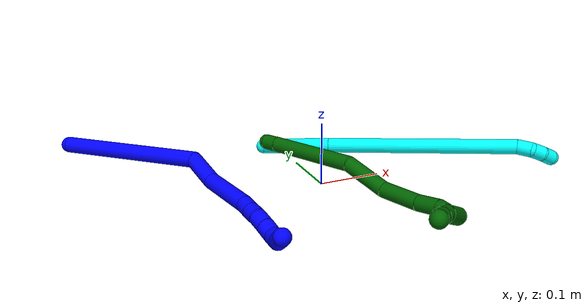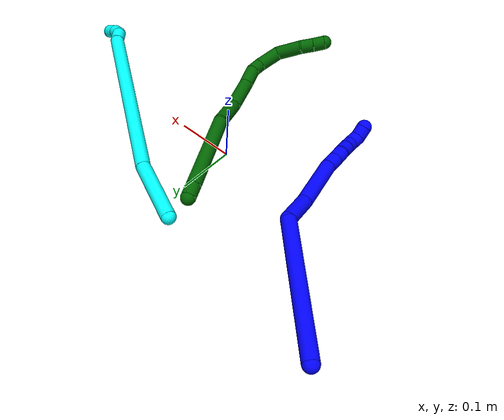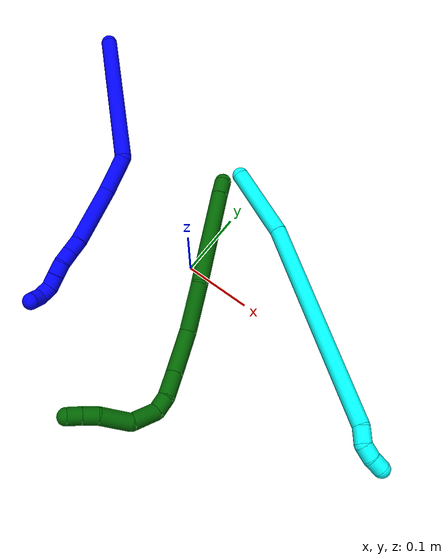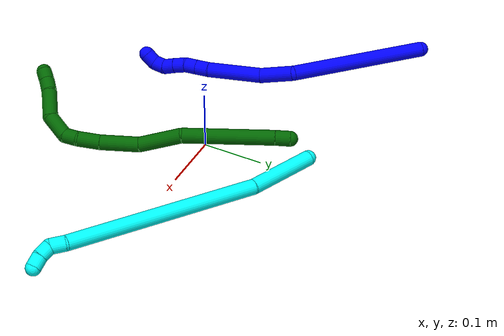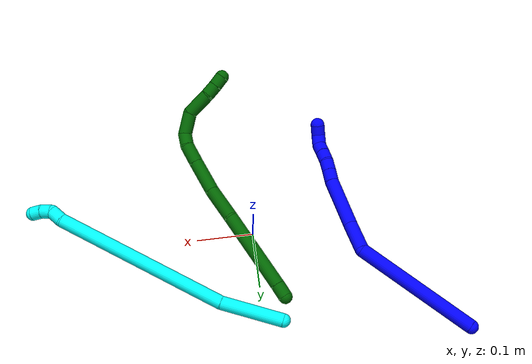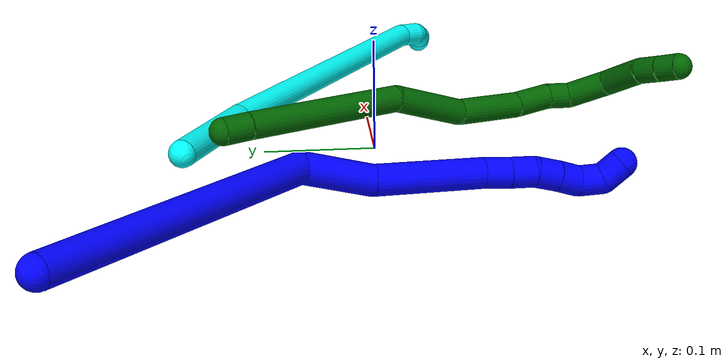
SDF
<sdf version="1.7">
 <world name="default">
  <model name="1">
   <static>0</static>
   <link name="1">
    <collision name="collision-cylinder-e_1_1_4">
     <pose>-0.030855 0.01054 -0.109899 -3.04597 -0.272526 2.47012</pose>
     <geometry><cylinder><radius>0.0125</radius><length>0.229267</length></cylinder></geometry>
     <surface>
      <friction><ode><mu>1.16</mu><mu2>1.16</mu2><slip1>0</slip1><slip2>0</slip2></ode></friction>
      <contact><ode><kp>1e+06</kp><kd>1</kd><max_vel>0</max_vel><min_depth>0.001</min_depth></ode></contact>
     </surface>
    </collision>
    <visual name="visual-cylinder-e_1_1_4">
     <pose>-0.030855 0.01054 -0.109899 -3.04597 -0.272526 2.47012</pose>
     <geometry><cylinder><radius>0.0125</radius><length>0.229267</length></cylinder></geometry>
     <material><ambient>0 0 1 1</ambient></material>
    </visual>
    <collision name="collision-cylinder-e_2_4_5">
     <pose>-0.069274 0.005402 -0.242929 2.54591 -0.264331 -0.817378</pose>
     <geometry><cylinder><radius>0.0125</radius><length>0.0579</length></cylinder></geometry>
     <surface>
      <friction><ode><mu>1.16</mu><mu2>1.16</mu2><slip1>0</slip1><slip2>0</slip2></ode></friction>
      <contact><ode><kp>1e+06</kp><kd>1</kd><max_vel>0</max_vel><min_depth>0.001</min_depth></ode></contact>
     </surface>
    </collision>
    <visual name="visual-cylinder-e_2_4_5">
     <pose>-0.069274 0.005402 -0.242929 2.54591 -0.264331 -0.817378</pose>
     <geometry><cylinder><radius>0.0125</radius><length>0.0579</length></cylinder></geometry>
     <material><ambient>0 0 1 1</ambient></material>
    </visual>
    <collision name="collision-cylinder-e_3_5_6">
     <pose>-0.08016 -0.030184 -0.306584 2.68498 -0.07344 -0.313611</pose>
     <geometry><cylinder><radius>0.0125</radius><length>0.090541</length></cylinder></geometry>
     <surface>
      <friction><ode><mu>1.16</mu><mu2>1.16</mu2><slip1>0</slip1><slip2>0</slip2></ode></friction>
      <contact><ode><kp>1e+06</kp><kd>1</kd><max_vel>0</max_vel><min_depth>0.001</min_depth></ode></contact>
     </surface>
    </collision>
    <visual name="visual-cylinder-e_3_5_6">
     <pose>-0.08016 -0.030184 -0.306584 2.68498 -0.07344 -0.313611</pose>
     <geometry><cylinder><radius>0.0125</radius><length>0.090541</length></cylinder></geometry>
     <material><ambient>0 0 1 1</ambient></material>
    </visual>
    <collision name="collision-cylinder-e_4_6_7">
     <pose>-0.083587 -0.056241 -0.356137 2.54366 -0.009657 -0.031332</pose>
     <geometry><cylinder><radius>0.0125</radius><length>0.021853</length></cylinder></geometry>
     <surface>
      <friction><ode><mu>1.16</mu><mu2>1.16</mu2><slip1>0</slip1><slip2>0</slip2></ode></friction>
      <contact><ode><kp>1e+06</kp><kd>1</kd><max_vel>0</max_vel><min_depth>0.001</min_depth></ode></contact>
     </surface>
    </collision>
    <visual name="visual-cylinder-e_4_6_7">
     <pose>-0.083587 -0.056241 -0.356137 2.54366 -0.009657 -0.031332</pose>
     <geometry><cylinder><radius>0.0125</radius><length>0.021853</length></cylinder></geometry>
     <material><ambient>0 0 1 1</ambient></material>
    </visual>
    <collision name="collision-cylinder-e_5_7_8">
     <pose>-0.08362 -0.06774 -0.373766 2.58513 0.00721 0.025239</pose>
     <geometry><cylinder><radius>0.0125</radius><length>0.020252</length></cylinder></geometry>
     <surface>
      <friction><ode><mu>1.16</mu><mu2>1.16</mu2><slip1>0</slip1><slip2>0</slip2></ode></friction>
      <contact><ode><kp>1e+06</kp><kd>1</kd><max_vel>0</max_vel><min_depth>0.001</min_depth></ode></contact>
     </surface>
    </collision>
    <visual name="visual-cylinder-e_5_7_8">
     <pose>-0.08362 -0.06774 -0.373766 2.58513 0.00721 0.025239</pose>
     <geometry><cylinder><radius>0.0125</radius><length>0.020252</length></cylinder></geometry>
     <material><ambient>0 0 1 1</ambient></material>
    </visual>
    <collision name="collision-cylinder-e_6_8_9">
     <pose>-0.086012 -0.07863 -0.390415 2.53872 -0.247127 -0.760083</pose>
     <geometry><cylinder><radius>0.0125</radius><length>0.020162</length></cylinder></geometry>
     <surface>
      <friction><ode><mu>1.16</mu><mu2>1.16</mu2><slip1>0</slip1><slip2>0</slip2></ode></friction>
      <contact><ode><kp>1e+06</kp><kd>1</kd><max_vel>0</max_vel><min_depth>0.001</min_depth></ode></contact>
     </surface>
    </collision>
    <visual name="visual-cylinder-e_6_8_9">
     <pose>-0.086012 -0.07863 -0.390415 2.53872 -0.247127 -0.760083</pose>
     <geometry><cylinder><radius>0.0125</radius><length>0.020162</length></cylinder></geometry>
     <material><ambient>0 0 1 1</ambient></material>
    </visual>
    <collision name="collision-cylinder-e_7_9_10">
     <pose>-0.091453 -0.089787 -0.406204 2.51383 -0.301664 -0.875786</pose>
     <geometry><cylinder><radius>0.0125</radius><length>0.020023</length></cylinder></geometry>
     <surface>
      <friction><ode><mu>1.16</mu><mu2>1.16</mu2><slip1>0</slip1><slip2>0</slip2></ode></friction>
      <contact><ode><kp>1e+06</kp><kd>1</kd><max_vel>0</max_vel><min_depth>0.001</min_depth></ode></contact>
     </surface>
    </collision>
    <visual name="visual-cylinder-e_7_9_10">
     <pose>-0.091453 -0.089787 -0.406204 2.51383 -0.301664 -0.875786</pose>
     <geometry><cylinder><radius>0.0125</radius><length>0.020023</length></cylinder></geometry>
     <material><ambient>0 0 1 1</ambient></material>
    </visual>
    <collision name="collision-cylinder-e_8_10_11">
     <pose>-0.09275 -0.101251 -0.421877 2.50646 0.168506 0.50299</pose>
     <geometry><cylinder><radius>0.0125</radius><length>0.020001</length></cylinder></geometry>
     <surface>
      <friction><ode><mu>1.16</mu><mu2>1.16</mu2><slip1>0</slip1><slip2>0</slip2></ode></friction>
      <contact><ode><kp>1e+06</kp><kd>1</kd><max_vel>0</max_vel><min_depth>0.001</min_depth></ode></contact>
     </surface>
    </collision>
    <visual name="visual-cylinder-e_8_10_11">
     <pose>-0.09275 -0.101251 -0.421877 2.50646 0.168506 0.50299</pose>
     <geometry><cylinder><radius>0.0125</radius><length>0.020001</length></cylinder></geometry>
     <material><ambient>0 0 1 1</ambient></material>
    </visual>
    <collision name="collision-cylinder-e_9_11_2">
     <pose>-0.084808 -0.108947 -0.437385 2.90229 0.677021 2.48345</pose>
     <geometry><cylinder><radius>0.0125</radius><length>0.020001</length></cylinder></geometry>
     <surface>
      <friction><ode><mu>1.16</mu><mu2>1.16</mu2><slip1>0</slip1><slip2>0</slip2></ode></friction>
      <contact><ode><kp>1e+06</kp><kd>1</kd><max_vel>0</max_vel><min_depth>0.001</min_depth></ode></contact>
     </surface>
    </collision>
    <visual name="visual-cylinder-e_9_11_2">
     <pose>-0.084808 -0.108947 -0.437385 2.90229 0.677021 2.48345</pose>
     <geometry><cylinder><radius>0.0125</radius><length>0.020001</length></cylinder></geometry>
     <material><ambient>0 0 1 1</ambient></material>
    </visual>
    <collision name="collision-sphere-2">
     <pose>-0.078543 -0.110795 -0.444958 0 -0 0</pose>
     <geometry><sphere><radius>0.0125</radius></sphere></geometry>
     <surface>
      <friction><ode><mu>1.16</mu><mu2>1.16</mu2><slip1>0</slip1><slip2>0</slip2></ode></friction>
      <contact><ode><kp>1e+06</kp><kd>1</kd><max_vel>0</max_vel><min_depth>0.001</min_depth></ode></contact>
     </surface>
    </collision>
    <visual name="visual-sphere-2">
     <pose>-0.078543 -0.110795 -0.444958 0 -0 0</pose>
     <geometry><sphere><radius>0.0125</radius></sphere></geometry>
     <material><ambient>0 0 1 1</ambient></material>
    </visual>
    <collision name="collision-sphere-11">
     <pose>-0.091073 -0.1071 -0.429813 0 -0 0</pose>
     <geometry><sphere><radius>0.0125</radius></sphere></geometry>
     <surface>
      <friction><ode><mu>1.16</mu><mu2>1.16</mu2><slip1>0</slip1><slip2>0</slip2></ode></friction>
      <contact><ode><kp>1e+06</kp><kd>1</kd><max_vel>0</max_vel><min_depth>0.001</min_depth></ode></contact>
     </surface>
    </collision>
    <visual name="visual-sphere-11">
     <pose>-0.091073 -0.1071 -0.429813 0 -0 0</pose>
     <geometry><sphere><radius>0.0125</radius></sphere></geometry>
     <material><ambient>0 0 1 1</ambient></material>
    </visual>
    <collision name="collision-sphere-10">
     <pose>-0.094428 -0.095402 -0.413941 0 -0 0</pose>
     <geometry><sphere><radius>0.0125</radius></sphere></geometry>
     <surface>
      <friction><ode><mu>1.16</mu><mu2>1.16</mu2><slip1>0</slip1><slip2>0</slip2></ode></friction>
      <contact><ode><kp>1e+06</kp><kd>1</kd><max_vel>0</max_vel><min_depth>0.001</min_depth></ode></contact>
     </surface>
    </collision>
    <visual name="visual-sphere-10">
     <pose>-0.094428 -0.095402 -0.413941 0 -0 0</pose>
     <geometry><sphere><radius>0.0125</radius></sphere></geometry>
     <material><ambient>0 0 1 1</ambient></material>
    </visual>
    <collision name="collision-sphere-9">
     <pose>-0.088478 -0.084173 -0.398467 0 -0 0</pose>
     <geometry><sphere><radius>0.0125</radius></sphere></geometry>
     <surface>
      <friction><ode><mu>1.16</mu><mu2>1.16</mu2><slip1>0</slip1><slip2>0</slip2></ode></friction>
      <contact><ode><kp>1e+06</kp><kd>1</kd><max_vel>0</max_vel><min_depth>0.001</min_depth></ode></contact>
     </surface>
    </collision>
    <visual name="visual-sphere-9">
     <pose>-0.088478 -0.084173 -0.398467 0 -0 0</pose>
     <geometry><sphere><radius>0.0125</radius></sphere></geometry>
     <material><ambient>0 0 1 1</ambient></material>
    </visual>
    <collision name="collision-sphere-4">
     <pose>-0.061711 0.021081 -0.219797 0 -0 0</pose>
     <geometry><sphere><radius>0.0125</radius></sphere></geometry>
     <surface>
      <friction><ode><mu>1.16</mu><mu2>1.16</mu2><slip1>0</slip1><slip2>0</slip2></ode></friction>
      <contact><ode><kp>1e+06</kp><kd>1</kd><max_vel>0</max_vel><min_depth>0.001</min_depth></ode></contact>
     </surface>
    </collision>
    <visual name="visual-sphere-4">
     <pose>-0.061711 0.021081 -0.219797 0 -0 0</pose>
     <geometry><sphere><radius>0.0125</radius></sphere></geometry>
     <material><ambient>0 0 1 1</ambient></material>
    </visual>
    <collision name="collision-sphere-1">
     <geometry><sphere><radius>0.0125</radius></sphere></geometry>
     <surface>
      <friction><ode><mu>1.16</mu><mu2>1.16</mu2><slip1>0</slip1><slip2>0</slip2></ode></friction>
      <contact><ode><kp>1e+06</kp><kd>1</kd><max_vel>0</max_vel><min_depth>0.001</min_depth></ode></contact>
     </surface>
    </collision>
    <visual name="visual-sphere-1">
     <geometry><sphere><radius>0.0125</radius></sphere></geometry>
     <material><ambient>0 0 1 1</ambient></material>
    </visual>
    <collision name="collision-sphere-8">
     <pose>-0.083547 -0.073088 -0.382364 0 -0 0</pose>
     <geometry><sphere><radius>0.0125</radius></sphere></geometry>
     <surface>
      <friction><ode><mu>1.16</mu><mu2>1.16</mu2><slip1>0</slip1><slip2>0</slip2></ode></friction>
      <contact><ode><kp>1e+06</kp><kd>1</kd><max_vel>0</max_vel><min_depth>0.001</min_depth></ode></contact>
     </surface>
    </collision>
    <visual name="visual-sphere-8">
     <pose>-0.083547 -0.073088 -0.382364 0 -0 0</pose>
     <geometry><sphere><radius>0.0125</radius></sphere></geometry>
     <material><ambient>0 0 1 1</ambient></material>
    </visual>
    <collision name="collision-sphere-5">
     <pose>-0.076838 -0.010277 -0.266061 0 -0 0</pose>
     <geometry><sphere><radius>0.0125</radius></sphere></geometry>
     <surface>
      <friction><ode><mu>1.16</mu><mu2>1.16</mu2><slip1>0</slip1><slip2>0</slip2></ode></friction>
      <contact><ode><kp>1e+06</kp><kd>1</kd><max_vel>0</max_vel><min_depth>0.001</min_depth></ode></contact>
     </surface>
    </collision>
    <visual name="visual-sphere-5">
     <pose>-0.076838 -0.010277 -0.266061 0 -0 0</pose>
     <geometry><sphere><radius>0.0125</radius></sphere></geometry>
     <material><ambient>0 0 1 1</ambient></material>
    </visual>
    <collision name="collision-sphere-6">
     <pose>-0.083481 -0.05009 -0.347107 0 -0 0</pose>
     <geometry><sphere><radius>0.0125</radius></sphere></geometry>
     <surface>
      <friction><ode><mu>1.16</mu><mu2>1.16</mu2><slip1>0</slip1><slip2>0</slip2></ode></friction>
      <contact><ode><kp>1e+06</kp><kd>1</kd><max_vel>0</max_vel><min_depth>0.001</min_depth></ode></contact>
     </surface>
    </collision>
    <visual name="visual-sphere-6">
     <pose>-0.083481 -0.05009 -0.347107 0 -0 0</pose>
     <geometry><sphere><radius>0.0125</radius></sphere></geometry>
     <material><ambient>0 0 1 1</ambient></material>
    </visual>
    <collision name="collision-sphere-7">
     <pose>-0.083693 -0.062391 -0.365168 0 -0 0</pose>
     <geometry><sphere><radius>0.0125</radius></sphere></geometry>
     <surface>
      <friction><ode><mu>1.16</mu><mu2>1.16</mu2><slip1>0</slip1><slip2>0</slip2></ode></friction>
      <contact><ode><kp>1e+06</kp><kd>1</kd><max_vel>0</max_vel><min_depth>0.001</min_depth></ode></contact>
     </surface>
    </collision>
    <visual name="visual-sphere-7">
     <pose>-0.083693 -0.062391 -0.365168 0 -0 0</pose>
     <geometry><sphere><radius>0.0125</radius></sphere></geometry>
     <material><ambient>0 0 1 1</ambient></material>
    </visual>
    <inertial>
     <pose>-0.057959 -0.020383 -0.231126 0 -0 0</pose>
     <mass>0.5</mass>
     <inertia>
      <ixx>-0.000117</ixx>
      <ixy>0</ixy>
      <ixz>0</ixz>
      <iyy>0.001303</iyy>
      <iyz>0</iyz>
      <izz>0.000197</izz>
     </inertia>
    </inertial>
   </link>
   <pose>-0.348402 0.228598 0.042811 2.06126 -1.07689 -2.9799</pose>
  </model>
  <model name="3">
   <static>0</static>
   <link name="3">
    <collision name="collision-cylinder-e_1_1_4">
     <pose>0.041297 -0.021447 0.032581 0.582167 0.813915 0.256839</pose>
     <geometry><cylinder><radius>0.0125</radius><length>0.113612</length></cylinder></geometry>
     <surface>
      <friction><ode><mu>1.16</mu><mu2>1.16</mu2><slip1>0</slip1><slip2>0</slip2></ode></friction>
      <contact><ode><kp>1e+06</kp><kd>1</kd><max_vel>0</max_vel><min_depth>0.001</min_depth></ode></contact>
     </surface>
    </collision>
    <visual name="visual-cylinder-e_1_1_4">
     <pose>0.041297 -0.021447 0.032581 0.582167 0.813915 0.256839</pose>
     <geometry><cylinder><radius>0.0125</radius><length>0.113612</length></cylinder></geometry>
     <material><ambient>0.003922 1 0.996078 1</ambient></material>
    </visual>
    <collision name="collision-cylinder-e_2_4_5">
     <pose>0.200299 -0.1264 0.134897 0.875019 0.824721 0.403647</pose>
     <geometry><cylinder><radius>0.0125</radius><length>0.320567</length></cylinder></geometry>
     <surface>
      <friction><ode><mu>1.16</mu><mu2>1.16</mu2><slip1>0</slip1><slip2>0</slip2></ode></friction>
      <contact><ode><kp>1e+06</kp><kd>1</kd><max_vel>0</max_vel><min_depth>0.001</min_depth></ode></contact>
     </surface>
    </collision>
    <visual name="visual-cylinder-e_2_4_5">
     <pose>0.200299 -0.1264 0.134897 0.875019 0.824721 0.403647</pose>
     <geometry><cylinder><radius>0.0125</radius><length>0.320567</length></cylinder></geometry>
     <material><ambient>0.003922 1 0.996078 1</ambient></material>
    </visual>
    <collision name="collision-cylinder-e_3_5_6">
     <pose>0.328121 -0.216691 0.206493 1.30316 0.963105 0.758558</pose>
     <geometry><cylinder><radius>0.0125</radius><length>0.024646</length></cylinder></geometry>
     <surface>
      <friction><ode><mu>1.16</mu><mu2>1.16</mu2><slip1>0</slip1><slip2>0</slip2></ode></friction>
      <contact><ode><kp>1e+06</kp><kd>1</kd><max_vel>0</max_vel><min_depth>0.001</min_depth></ode></contact>
     </surface>
    </collision>
    <visual name="visual-cylinder-e_3_5_6">
     <pose>0.328121 -0.216691 0.206493 1.30316 0.963105 0.758558</pose>
     <geometry><cylinder><radius>0.0125</radius><length>0.024646</length></cylinder></geometry>
     <material><ambient>0.003922 1 0.996078 1</ambient></material>
    </visual>
    <collision name="collision-cylinder-e_4_6_7">
     <pose>0.347513 -0.223948 0.213105 0.099025 1.09537 0.060429</pose>
     <geometry><cylinder><radius>0.0125</radius><length>0.020865</length></cylinder></geometry>
     <surface>
      <friction><ode><mu>1.16</mu><mu2>1.16</mu2><slip1>0</slip1><slip2>0</slip2></ode></friction>
      <contact><ode><kp>1e+06</kp><kd>1</kd><max_vel>0</max_vel><min_depth>0.001</min_depth></ode></contact>
     </surface>
    </collision>
    <visual name="visual-cylinder-e_4_6_7">
     <pose>0.347513 -0.223948 0.213105 0.099025 1.09537 0.060429</pose>
     <geometry><cylinder><radius>0.0125</radius><length>0.020865</length></cylinder></geometry>
     <material><ambient>0.003922 1 0.996078 1</ambient></material>
    </visual>
    <collision name="collision-cylinder-e_5_7_2">
     <pose>0.365086 -0.222529 0.223398 -0.328871 0.956288 -0.17157</pose>
     <geometry><cylinder><radius>0.0125</radius><length>0.020311</length></cylinder></geometry>
     <surface>
      <friction><ode><mu>1.16</mu><mu2>1.16</mu2><slip1>0</slip1><slip2>0</slip2></ode></friction>
      <contact><ode><kp>1e+06</kp><kd>1</kd><max_vel>0</max_vel><min_depth>0.001</min_depth></ode></contact>
     </surface>
    </collision>
    <visual name="visual-cylinder-e_5_7_2">
     <pose>0.365086 -0.222529 0.223398 -0.328871 0.956288 -0.17157</pose>
     <geometry><cylinder><radius>0.0125</radius><length>0.020311</length></cylinder></geometry>
     <material><ambient>0.003922 1 0.996078 1</ambient></material>
    </visual>
    <collision name="collision-sphere-2">
     <pose>0.373384 -0.220638 0.22894 0 -0 0</pose>
     <geometry><sphere><radius>0.0125</radius></sphere></geometry>
     <surface>
      <friction><ode><mu>1.16</mu><mu2>1.16</mu2><slip1>0</slip1><slip2>0</slip2></ode></friction>
      <contact><ode><kp>1e+06</kp><kd>1</kd><max_vel>0</max_vel><min_depth>0.001</min_depth></ode></contact>
     </surface>
    </collision>
    <visual name="visual-sphere-2">
     <pose>0.373384 -0.220638 0.22894 0 -0 0</pose>
     <geometry><sphere><radius>0.0125</radius></sphere></geometry>
     <material><ambient>0.003922 1 0.996078 1</ambient></material>
    </visual>
    <collision name="collision-sphere-7">
     <pose>0.356789 -0.224421 0.217857 0 -0 0</pose>
     <geometry><sphere><radius>0.0125</radius></sphere></geometry>
     <surface>
      <friction><ode><mu>1.16</mu><mu2>1.16</mu2><slip1>0</slip1><slip2>0</slip2></ode></friction>
      <contact><ode><kp>1e+06</kp><kd>1</kd><max_vel>0</max_vel><min_depth>0.001</min_depth></ode></contact>
     </surface>
    </collision>
    <visual name="visual-sphere-7">
     <pose>0.356789 -0.224421 0.217857 0 -0 0</pose>
     <geometry><sphere><radius>0.0125</radius></sphere></geometry>
     <material><ambient>0.003922 1 0.996078 1</ambient></material>
    </visual>
    <collision name="collision-sphere-6">
     <pose>0.338238 -0.223476 0.208354 0 -0 0</pose>
     <geometry><sphere><radius>0.0125</radius></sphere></geometry>
     <surface>
      <friction><ode><mu>1.16</mu><mu2>1.16</mu2><slip1>0</slip1><slip2>0</slip2></ode></friction>
      <contact><ode><kp>1e+06</kp><kd>1</kd><max_vel>0</max_vel><min_depth>0.001</min_depth></ode></contact>
     </surface>
    </collision>
    <visual name="visual-sphere-6">
     <pose>0.338238 -0.223476 0.208354 0 -0 0</pose>
     <geometry><sphere><radius>0.0125</radius></sphere></geometry>
     <material><ambient>0.003922 1 0.996078 1</ambient></material>
    </visual>
    <collision name="collision-sphere-5">
     <pose>0.318005 -0.209905 0.204632 0 -0 0</pose>
     <geometry><sphere><radius>0.0125</radius></sphere></geometry>
     <surface>
      <friction><ode><mu>1.16</mu><mu2>1.16</mu2><slip1>0</slip1><slip2>0</slip2></ode></friction>
      <contact><ode><kp>1e+06</kp><kd>1</kd><max_vel>0</max_vel><min_depth>0.001</min_depth></ode></contact>
     </surface>
    </collision>
    <visual name="visual-sphere-5">
     <pose>0.318005 -0.209905 0.204632 0 -0 0</pose>
     <geometry><sphere><radius>0.0125</radius></sphere></geometry>
     <material><ambient>0.003922 1 0.996078 1</ambient></material>
    </visual>
    <collision name="collision-sphere-1">
     <geometry><sphere><radius>0.0125</radius></sphere></geometry>
     <surface>
      <friction><ode><mu>1.16</mu><mu2>1.16</mu2><slip1>0</slip1><slip2>0</slip2></ode></friction>
      <contact><ode><kp>1e+06</kp><kd>1</kd><max_vel>0</max_vel><min_depth>0.001</min_depth></ode></contact>
     </surface>
    </collision>
    <visual name="visual-sphere-1">
     <geometry><sphere><radius>0.0125</radius></sphere></geometry>
     <material><ambient>0.003922 1 0.996078 1</ambient></material>
    </visual>
    <collision name="collision-sphere-4">
     <pose>0.082594 -0.042894 0.065162 0 -0 0</pose>
     <geometry><sphere><radius>0.0125</radius></sphere></geometry>
     <surface>
      <friction><ode><mu>1.16</mu><mu2>1.16</mu2><slip1>0</slip1><slip2>0</slip2></ode></friction>
      <contact><ode><kp>1e+06</kp><kd>1</kd><max_vel>0</max_vel><min_depth>0.001</min_depth></ode></contact>
     </surface>
    </collision>
    <visual name="visual-sphere-4">
     <pose>0.082594 -0.042894 0.065162 0 -0 0</pose>
     <geometry><sphere><radius>0.0125</radius></sphere></geometry>
     <material><ambient>0.003922 1 0.996078 1</ambient></material>
    </visual>
    <inertial>
     <pose>0.183308 -0.114978 0.122036 0 -0 0</pose>
     <mass>0.5</mass>
     <inertia>
      <ixx>0.002595</ixx>
      <ixy>0</ixy>
      <ixz>0</ixz>
      <iyy>0.003097</iyy>
      <iyz>0</iyz>
      <izz>-0.000618</izz>
     </inertia>
    </inertial>
   </link>
   <pose>-0.032733 0.169163 0.011843 -1.1128 0.676143 -0.76258</pose>
  </model>
  <model name="6">
   <static>0</static>
   <link name="6">
    <collision name="collision-cylinder-e_1_1_4">
     <pose>-0.00106 -0.010801 0.005893 1.07132 -0.085932 -0.051025</pose>
     <geometry><cylinder><radius>0.0125</radius><length>0.024698</length></cylinder></geometry>
     <surface>
      <friction><ode><mu>1.16</mu><mu2>1.16</mu2><slip1>0</slip1><slip2>0</slip2></ode></friction>
      <contact><ode><kp>1e+06</kp><kd>1</kd><max_vel>0</max_vel><min_depth>0.001</min_depth></ode></contact>
     </surface>
    </collision>
    <visual name="visual-cylinder-e_1_1_4">
     <pose>-0.00106 -0.010801 0.005893 1.07132 -0.085932 -0.051025</pose>
     <geometry><cylinder><radius>0.0125</radius><length>0.024698</length></cylinder></geometry>
     <material><ambient>0 0.392157 0.003922 1</ambient></material>
    </visual>
    <collision name="collision-cylinder-e_2_4_5">
     <pose>-0.011481 -0.086596 0.047338 1.07026 -0.125692 -0.074578</pose>
     <geometry><cylinder><radius>0.0125</radius><length>0.149343</length></cylinder></geometry>
     <surface>
      <friction><ode><mu>1.16</mu><mu2>1.16</mu2><slip1>0</slip1><slip2>0</slip2></ode></friction>
      <contact><ode><kp>1e+06</kp><kd>1</kd><max_vel>0</max_vel><min_depth>0.001</min_depth></ode></contact>
     </surface>
    </collision>
    <visual name="visual-cylinder-e_2_4_5">
     <pose>-0.011481 -0.086596 0.047338 1.07026 -0.125692 -0.074578</pose>
     <geometry><cylinder><radius>0.0125</radius><length>0.149343</length></cylinder></geometry>
     <material><ambient>0 0.392157 0.003922 1</ambient></material>
    </visual>
    <collision name="collision-cylinder-e_3_5_6">
     <pose>-0.033753 -0.176175 0.105984 0.816651 -0.365565 -0.159604</pose>
     <geometry><cylinder><radius>0.0125</radius><length>0.072236</length></cylinder></geometry>
     <surface>
      <friction><ode><mu>1.16</mu><mu2>1.16</mu2><slip1>0</slip1><slip2>0</slip2></ode></friction>
      <contact><ode><kp>1e+06</kp><kd>1</kd><max_vel>0</max_vel><min_depth>0.001</min_depth></ode></contact>
     </surface>
    </collision>
    <visual name="visual-cylinder-e_3_5_6">
     <pose>-0.033753 -0.176175 0.105984 0.816651 -0.365565 -0.159604</pose>
     <geometry><cylinder><radius>0.0125</radius><length>0.072236</length></cylinder></geometry>
     <material><ambient>0 0.392157 0.003922 1</ambient></material>
    </visual>
    <collision name="collision-cylinder-e_4_6_7">
     <pose>-0.049864 -0.22732 0.147068 0.975443 -0.099412 -0.052766</pose>
     <geometry><cylinder><radius>0.0125</radius><length>0.064475</length></cylinder></geometry>
     <surface>
      <friction><ode><mu>1.16</mu><mu2>1.16</mu2><slip1>0</slip1><slip2>0</slip2></ode></friction>
      <contact><ode><kp>1e+06</kp><kd>1</kd><max_vel>0</max_vel><min_depth>0.001</min_depth></ode></contact>
     </surface>
    </collision>
    <visual name="visual-cylinder-e_4_6_7">
     <pose>-0.049864 -0.22732 0.147068 0.975443 -0.099412 -0.052766</pose>
     <geometry><cylinder><radius>0.0125</radius><length>0.064475</length></cylinder></geometry>
     <material><ambient>0 0.392157 0.003922 1</ambient></material>
    </visual>
    <collision name="collision-cylinder-e_5_7_8">
     <pose>-0.052943 -0.269833 0.174131 1.05373 0.006521 0.003793</pose>
     <geometry><cylinder><radius>0.0125</radius><length>0.036708</length></cylinder></geometry>
     <surface>
      <friction><ode><mu>1.16</mu><mu2>1.16</mu2><slip1>0</slip1><slip2>0</slip2></ode></friction>
      <contact><ode><kp>1e+06</kp><kd>1</kd><max_vel>0</max_vel><min_depth>0.001</min_depth></ode></contact>
     </surface>
    </collision>
    <visual name="visual-cylinder-e_5_7_8">
     <pose>-0.052943 -0.269833 0.174131 1.05373 0.006521 0.003793</pose>
     <geometry><cylinder><radius>0.0125</radius><length>0.036708</length></cylinder></geometry>
     <material><ambient>0 0.392157 0.003922 1</ambient></material>
    </visual>
    <collision name="collision-cylinder-e_6_8_9">
     <pose>-0.051943 -0.293531 0.191734 0.737082 0.07628 0.02947</pose>
     <geometry><cylinder><radius>0.0125</radius><length>0.02311</length></cylinder></geometry>
     <surface>
      <friction><ode><mu>1.16</mu><mu2>1.16</mu2><slip1>0</slip1><slip2>0</slip2></ode></friction>
      <contact><ode><kp>1e+06</kp><kd>1</kd><max_vel>0</max_vel><min_depth>0.001</min_depth></ode></contact>
     </surface>
    </collision>
    <visual name="visual-cylinder-e_6_8_9">
     <pose>-0.051943 -0.293531 0.191734 0.737082 0.07628 0.02947</pose>
     <geometry><cylinder><radius>0.0125</radius><length>0.02311</length></cylinder></geometry>
     <material><ambient>0 0.392157 0.003922 1</ambient></material>
    </visual>
    <collision name="collision-cylinder-e_7_9_10">
     <pose>-0.038677 -0.310485 0.213378 0.612328 0.658013 0.215012</pose>
     <geometry><cylinder><radius>0.0125</radius><length>0.040505</length></cylinder></geometry>
     <surface>
      <friction><ode><mu>1.16</mu><mu2>1.16</mu2><slip1>0</slip1><slip2>0</slip2></ode></friction>
      <contact><ode><kp>1e+06</kp><kd>1</kd><max_vel>0</max_vel><min_depth>0.001</min_depth></ode></contact>
     </surface>
    </collision>
    <visual name="visual-cylinder-e_7_9_10">
     <pose>-0.038677 -0.310485 0.213378 0.612328 0.658013 0.215012</pose>
     <geometry><cylinder><radius>0.0125</radius><length>0.040505</length></cylinder></geometry>
     <material><ambient>0 0.392157 0.003922 1</ambient></material>
    </visual>
    <collision name="collision-cylinder-e_8_10_11">
     <pose>-0.006645 -0.318674 0.238738 -0.083206 1.01183 -0.046116</pose>
     <geometry><cylinder><radius>0.0125</radius><length>0.046349</length></cylinder></geometry>
     <surface>
      <friction><ode><mu>1.16</mu><mu2>1.16</mu2><slip1>0</slip1><slip2>0</slip2></ode></friction>
      <contact><ode><kp>1e+06</kp><kd>1</kd><max_vel>0</max_vel><min_depth>0.001</min_depth></ode></contact>
     </surface>
    </collision>
    <visual name="visual-cylinder-e_8_10_11">
     <pose>-0.006645 -0.318674 0.238738 -0.083206 1.01183 -0.046116</pose>
     <geometry><cylinder><radius>0.0125</radius><length>0.046349</length></cylinder></geometry>
     <material><ambient>0 0.392157 0.003922 1</ambient></material>
    </visual>
    <collision name="collision-cylinder-e_9_11_12">
     <pose>0.020768 -0.317599 0.258874 -0.006774 0.777414 -0.002774</pose>
     <geometry><cylinder><radius>0.0125</radius><length>0.02214</length></cylinder></geometry>
     <surface>
      <friction><ode><mu>1.16</mu><mu2>1.16</mu2><slip1>0</slip1><slip2>0</slip2></ode></friction>
      <contact><ode><kp>1e+06</kp><kd>1</kd><max_vel>0</max_vel><min_depth>0.001</min_depth></ode></contact>
     </surface>
    </collision>
    <visual name="visual-cylinder-e_9_11_12">
     <pose>0.020768 -0.317599 0.258874 -0.006774 0.777414 -0.002774</pose>
     <geometry><cylinder><radius>0.0125</radius><length>0.02214</length></cylinder></geometry>
     <material><ambient>0 0.392157 0.003922 1</ambient></material>
    </visual>
    <collision name="collision-cylinder-e_10_12_2">
     <pose>0.035566 -0.318125 0.274154 0.078154 0.759107 0.031189</pose>
     <geometry><cylinder><radius>0.0125</radius><length>0.020436</length></cylinder></geometry>
     <surface>
      <friction><ode><mu>1.16</mu><mu2>1.16</mu2><slip1>0</slip1><slip2>0</slip2></ode></friction>
      <contact><ode><kp>1e+06</kp><kd>1</kd><max_vel>0</max_vel><min_depth>0.001</min_depth></ode></contact>
     </surface>
    </collision>
    <visual name="visual-cylinder-e_10_12_2">
     <pose>0.035566 -0.318125 0.274154 0.078154 0.759107 0.031189</pose>
     <geometry><cylinder><radius>0.0125</radius><length>0.020436</length></cylinder></geometry>
     <material><ambient>0 0.392157 0.003922 1</ambient></material>
    </visual>
    <collision name="collision-sphere-2">
     <pose>0.042598 -0.318703 0.281544 0 -0 0</pose>
     <geometry><sphere><radius>0.0125</radius></sphere></geometry>
     <surface>
      <friction><ode><mu>1.16</mu><mu2>1.16</mu2><slip1>0</slip1><slip2>0</slip2></ode></friction>
      <contact><ode><kp>1e+06</kp><kd>1</kd><max_vel>0</max_vel><min_depth>0.001</min_depth></ode></contact>
     </surface>
    </collision>
    <visual name="visual-sphere-2">
     <pose>0.042598 -0.318703 0.281544 0 -0 0</pose>
     <geometry><sphere><radius>0.0125</radius></sphere></geometry>
     <material><ambient>0 0.392157 0.003922 1</ambient></material>
    </visual>
    <collision name="collision-sphere-12">
     <pose>0.028533 -0.317546 0.266764 0 -0 0</pose>
     <geometry><sphere><radius>0.0125</radius></sphere></geometry>
     <surface>
      <friction><ode><mu>1.16</mu><mu2>1.16</mu2><slip1>0</slip1><slip2>0</slip2></ode></friction>
      <contact><ode><kp>1e+06</kp><kd>1</kd><max_vel>0</max_vel><min_depth>0.001</min_depth></ode></contact>
     </surface>
    </collision>
    <visual name="visual-sphere-12">
     <pose>0.028533 -0.317546 0.266764 0 -0 0</pose>
     <geometry><sphere><radius>0.0125</radius></sphere></geometry>
     <material><ambient>0 0.392157 0.003922 1</ambient></material>
    </visual>
    <collision name="collision-sphere-11">
     <pose>0.013003 -0.317653 0.250985 0 -0 0</pose>
     <geometry><sphere><radius>0.0125</radius></sphere></geometry>
     <surface>
      <friction><ode><mu>1.16</mu><mu2>1.16</mu2><slip1>0</slip1><slip2>0</slip2></ode></friction>
      <contact><ode><kp>1e+06</kp><kd>1</kd><max_vel>0</max_vel><min_depth>0.001</min_depth></ode></contact>
     </surface>
    </collision>
    <visual name="visual-sphere-11">
     <pose>0.013003 -0.317653 0.250985 0 -0 0</pose>
     <geometry><sphere><radius>0.0125</radius></sphere></geometry>
     <material><ambient>0 0.392157 0.003922 1</ambient></material>
    </visual>
    <collision name="collision-sphere-10">
     <pose>-0.026292 -0.319695 0.226491 0 -0 0</pose>
     <geometry><sphere><radius>0.0125</radius></sphere></geometry>
     <surface>
      <friction><ode><mu>1.16</mu><mu2>1.16</mu2><slip1>0</slip1><slip2>0</slip2></ode></friction>
      <contact><ode><kp>1e+06</kp><kd>1</kd><max_vel>0</max_vel><min_depth>0.001</min_depth></ode></contact>
     </surface>
    </collision>
    <visual name="visual-sphere-10">
     <pose>-0.026292 -0.319695 0.226491 0 -0 0</pose>
     <geometry><sphere><radius>0.0125</radius></sphere></geometry>
     <material><ambient>0 0.392157 0.003922 1</ambient></material>
    </visual>
    <collision name="collision-sphere-9">
     <pose>-0.051063 -0.301275 0.200265 0 -0 0</pose>
     <geometry><sphere><radius>0.0125</radius></sphere></geometry>
     <surface>
      <friction><ode><mu>1.16</mu><mu2>1.16</mu2><slip1>0</slip1><slip2>0</slip2></ode></friction>
      <contact><ode><kp>1e+06</kp><kd>1</kd><max_vel>0</max_vel><min_depth>0.001</min_depth></ode></contact>
     </surface>
    </collision>
    <visual name="visual-sphere-9">
     <pose>-0.051063 -0.301275 0.200265 0 -0 0</pose>
     <geometry><sphere><radius>0.0125</radius></sphere></geometry>
     <material><ambient>0 0.392157 0.003922 1</ambient></material>
    </visual>
    <collision name="collision-sphere-4">
     <pose>-0.00212 -0.021601 0.011786 0 -0 0</pose>
     <geometry><sphere><radius>0.0125</radius></sphere></geometry>
     <surface>
      <friction><ode><mu>1.16</mu><mu2>1.16</mu2><slip1>0</slip1><slip2>0</slip2></ode></friction>
      <contact><ode><kp>1e+06</kp><kd>1</kd><max_vel>0</max_vel><min_depth>0.001</min_depth></ode></contact>
     </surface>
    </collision>
    <visual name="visual-sphere-4">
     <pose>-0.00212 -0.021601 0.011786 0 -0 0</pose>
     <geometry><sphere><radius>0.0125</radius></sphere></geometry>
     <material><ambient>0 0.392157 0.003922 1</ambient></material>
    </visual>
    <collision name="collision-sphere-1">
     <geometry><sphere><radius>0.0125</radius></sphere></geometry>
     <surface>
      <friction><ode><mu>1.16</mu><mu2>1.16</mu2><slip1>0</slip1><slip2>0</slip2></ode></friction>
      <contact><ode><kp>1e+06</kp><kd>1</kd><max_vel>0</max_vel><min_depth>0.001</min_depth></ode></contact>
     </surface>
    </collision>
    <visual name="visual-sphere-1">
     <geometry><sphere><radius>0.0125</radius></sphere></geometry>
     <material><ambient>0 0.392157 0.003922 1</ambient></material>
    </visual>
    <collision name="collision-sphere-8">
     <pose>-0.052824 -0.285787 0.183204 0 -0 0</pose>
     <geometry><sphere><radius>0.0125</radius></sphere></geometry>
     <surface>
      <friction><ode><mu>1.16</mu><mu2>1.16</mu2><slip1>0</slip1><slip2>0</slip2></ode></friction>
      <contact><ode><kp>1e+06</kp><kd>1</kd><max_vel>0</max_vel><min_depth>0.001</min_depth></ode></contact>
     </surface>
    </collision>
    <visual name="visual-sphere-8">
     <pose>-0.052824 -0.285787 0.183204 0 -0 0</pose>
     <geometry><sphere><radius>0.0125</radius></sphere></geometry>
     <material><ambient>0 0.392157 0.003922 1</ambient></material>
    </visual>
    <collision name="collision-sphere-5">
     <pose>-0.020842 -0.15159 0.08289 0 -0 0</pose>
     <geometry><sphere><radius>0.0125</radius></sphere></geometry>
     <surface>
      <friction><ode><mu>1.16</mu><mu2>1.16</mu2><slip1>0</slip1><slip2>0</slip2></ode></friction>
      <contact><ode><kp>1e+06</kp><kd>1</kd><max_vel>0</max_vel><min_depth>0.001</min_depth></ode></contact>
     </surface>
    </collision>
    <visual name="visual-sphere-5">
     <pose>-0.020842 -0.15159 0.08289 0 -0 0</pose>
     <geometry><sphere><radius>0.0125</radius></sphere></geometry>
     <material><ambient>0 0.392157 0.003922 1</ambient></material>
    </visual>
    <collision name="collision-sphere-6">
     <pose>-0.046664 -0.200761 0.129079 0 -0 0</pose>
     <geometry><sphere><radius>0.0125</radius></sphere></geometry>
     <surface>
      <friction><ode><mu>1.16</mu><mu2>1.16</mu2><slip1>0</slip1><slip2>0</slip2></ode></friction>
      <contact><ode><kp>1e+06</kp><kd>1</kd><max_vel>0</max_vel><min_depth>0.001</min_depth></ode></contact>
     </surface>
    </collision>
    <visual name="visual-sphere-6">
     <pose>-0.046664 -0.200761 0.129079 0 -0 0</pose>
     <geometry><sphere><radius>0.0125</radius></sphere></geometry>
     <material><ambient>0 0.392157 0.003922 1</ambient></material>
    </visual>
    <collision name="collision-sphere-7">
     <pose>-0.053063 -0.253879 0.165058 0 -0 0</pose>
     <geometry><sphere><radius>0.0125</radius></sphere></geometry>
     <surface>
      <friction><ode><mu>1.16</mu><mu2>1.16</mu2><slip1>0</slip1><slip2>0</slip2></ode></friction>
      <contact><ode><kp>1e+06</kp><kd>1</kd><max_vel>0</max_vel><min_depth>0.001</min_depth></ode></contact>
     </surface>
    </collision>
    <visual name="visual-sphere-7">
     <pose>-0.053063 -0.253879 0.165058 0 -0 0</pose>
     <geometry><sphere><radius>0.0125</radius></sphere></geometry>
     <material><ambient>0 0.392157 0.003922 1</ambient></material>
    </visual>
    <inertial>
     <pose>-0.022451 -0.196299 0.132437 0 -0 0</pose>
     <mass>0.5</mass>
     <inertia>
      <ixx>0.000336</ixx>
      <ixy>0</ixy>
      <ixz>0</ixz>
      <iyy>0.00015</iyy>
      <iyz>0</iyz>
      <izz>0.000358</izz>
     </inertia>
    </inertial>
   </link>
   <pose>-0.04024 0.133315 0.032724 -2.4346 -0.951277 -2.92498</pose>
  </model>
 </world>
</sdf>
